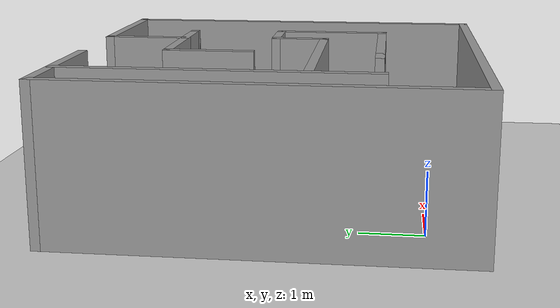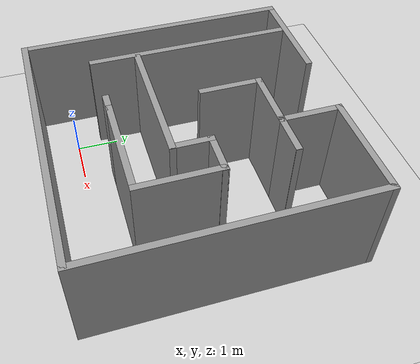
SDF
<sdf version="1.7">
 <world name="default">
  <light name="sun" type="directional">
   <pose>0 0 10 0 -0 0</pose>
   <diffuse>0.8 0.8 0.8 1</diffuse>
   <specular>0.2 0.2 0.2 1</specular>
   <attenuation>
    <range>1000</range>
    <constant>0.9</constant>
    <linear>0.01</linear>
    <quadratic>0.001</quadratic>
   </attenuation>
   <direction>-0.5 0.1 -0.9</direction>
   <spot><inner_angle>0</inner_angle><outer_angle>0</outer_angle><falloff>0</falloff></spot>
  </light>
  <model name="ground_plane">
   <static>1</static>
   <link name="link">
    <collision name="collision">
     <geometry><plane><normal>0 0 1</normal><size>100 100</size></plane></geometry>
     <surface>
      <contact><collide_bitmask>65535</collide_bitmask></contact>
      <friction><ode><mu>100</mu><mu2>50</mu2></ode></friction>
     </surface>
    </collision>
    <visual name="visual">
     <cast_shadows>0</cast_shadows>
     <geometry><plane><normal>0 0 1</normal><size>100 100</size></plane></geometry>
     <material>
      <script><uri>file://media/materials/scripts/gazebo.material</uri><name>Gazebo/Grey</name></script>
     </material>
    </visual>
   </link>
  </model>
  <gravity>0 0 -9.8</gravity>
  <magnetic_field>6e-06 2.3e-05 -4.2e-05</magnetic_field>
  <atmosphere type="adiabatic"/>
  <physics type="ode">
   <max_step_size>0.001</max_step_size>
   <real_time_factor>1</real_time_factor>
   <real_time_update_rate>1000</real_time_update_rate>
  </physics>
  <scene><ambient>0.4 0.4 0.4 1</ambient><background>0.7 0.7 0.7 1</background><shadows>1</shadows></scene>
  <audio><device>default</device></audio>
  <spherical_coordinates>
   <surface_model>EARTH_WGS84</surface_model>
   <latitude_deg>0</latitude_deg>
   <longitude_deg>0</longitude_deg>
   <elevation>0</elevation>
   <heading_deg>0</heading_deg>
  </spherical_coordinates>
  <model name="maze1">
   <pose>3.13 2.38 0 0 -0 0</pose>
   <link name="Wall_10">
    <collision name="Wall_10_Collision">
     <geometry><box><size>6.5 0.15 2.5</size></box></geometry>
     <pose>0 0 1.25 0 -0 0</pose>
    </collision>
    <visual name="Wall_10_Visual">
     <pose>0 0 1.25 0 -0 0</pose>
     <geometry><box><size>6.5 0.15 2.5</size></box></geometry>
     <material>
      <script><uri>file://media/materials/scripts/gazebo.material</uri><name>Gazebo/Grey</name></script>
      <ambient>1 1 1 1</ambient>
     </material>
     <meta><layer>0</layer></meta>
    </visual>
    <pose>-4.31449 0 0 0 -0 -1.5708</pose>
   </link>
   <link name="Wall_11">
    <collision name="Wall_11_Collision">
     <geometry><box><size>6.5 0.15 2.5</size></box></geometry>
     <pose>0 0 1.25 0 -0 0</pose>
    </collision>
    <visual name="Wall_11_Visual">
     <pose>0 0 1.25 0 -0 0</pose>
     <geometry><box><size>6.5 0.15 2.5</size></box></geometry>
     <material>
      <script><uri>file://media/materials/scripts/gazebo.material</uri><name>Gazebo/Grey</name></script>
      <ambient>1 1 1 1</ambient>
     </material>
     <meta><layer>0</layer></meta>
    </visual>
    <pose>-1.13949 -3.175 0 0 -0 0</pose>
   </link>
   <link name="Wall_12">
    <collision name="Wall_12_Collision">
     <geometry><box><size>6.5 0.15 2.5</size></box></geometry>
     <pose>0 0 1.25 0 -0 0</pose>
    </collision>
    <visual name="Wall_12_Visual">
     <pose>0 0 1.25 0 -0 0</pose>
     <geometry><box><size>6.5 0.15 2.5</size></box></geometry>
     <material>
      <script><uri>file://media/materials/scripts/gazebo.material</uri><name>Gazebo/Grey</name></script>
      <ambient>1 1 1 1</ambient>
     </material>
     <meta><layer>0</layer></meta>
    </visual>
    <pose>2.03551 0 0 0 -0 1.5708</pose>
   </link>
   <link name="Wall_13">
    <collision name="Wall_13_Collision">
     <geometry><box><size>2.5 0.15 2.5</size></box></geometry>
     <pose>0 0 1.25 0 -0 0</pose>
    </collision>
    <visual name="Wall_13_Visual">
     <pose>0 0 1.25 0 -0 0</pose>
     <geometry><box><size>2.5 0.15 2.5</size></box></geometry>
     <material>
      <script><uri>file://media/materials/scripts/gazebo.material</uri><name>Gazebo/Grey</name></script>
      <ambient>1 1 1 1</ambient>
     </material>
     <meta><layer>0</layer></meta>
    </visual>
    <pose>0.860505 3.175 0 0 -0 3.14159</pose>
   </link>
   <link name="Wall_16">
    <collision name="Wall_16_Collision">
     <geometry><box><size>5 0.15 2.5</size></box></geometry>
     <pose>0 0 1.25 0 -0 0</pose>
    </collision>
    <visual name="Wall_16_Visual">
     <pose>0 0 1.25 0 -0 0</pose>
     <geometry><box><size>5 0.15 2.5</size></box></geometry>
     <material>
      <script><uri>file://media/materials/scripts/gazebo.material</uri><name>Gazebo/Grey</name></script>
      <ambient>1 1 1 1</ambient>
     </material>
     <meta><layer>0</layer></meta>
    </visual>
    <pose>-3.36298 0.727856 0 0 -0 1.5708</pose>
   </link>
   <link name="Wall_24">
    <collision name="Wall_24_Collision">
     <geometry><box><size>1.5 0.15 2.5</size></box></geometry>
     <pose>0 0 1.25 0 -0 0</pose>
    </collision>
    <visual name="Wall_24_Visual">
     <pose>0 0 1.25 0 -0 0</pose>
     <geometry><box><size>1.5 0.15 2.5</size></box></geometry>
     <material>
      <script><uri>file://media/materials/scripts/gazebo.material</uri><name>Gazebo/Grey</name></script>
      <ambient>1 1 1 1</ambient>
     </material>
     <meta><layer>0</layer></meta>
    </visual>
    <pose>-0.314495 2.5 0 0 -0 -1.5708</pose>
   </link>
   <link name="Wall_25">
    <collision name="Wall_25_Collision">
     <geometry><box><size>0.16 0.15 2.5</size></box></geometry>
     <pose>0 0 1.25 0 -0 0</pose>
    </collision>
    <visual name="Wall_25_Visual">
     <pose>0 0 1.25 0 -0 0</pose>
     <geometry><box><size>0.16 0.15 2.5</size></box></geometry>
     <material>
      <script><uri>file://media/materials/scripts/gazebo.material</uri><name>Gazebo/Grey</name></script>
      <ambient>1 1 1 1</ambient>
     </material>
     <meta><layer>0</layer></meta>
    </visual>
    <pose>-0.309495 1.825 0 0 -0 0</pose>
   </link>
   <link name="Wall_26">
    <collision name="Wall_26_Collision">
     <geometry><box><size>1.5 0.15 2.5</size></box></geometry>
     <pose>0 0 1.25 0 -0 0</pose>
    </collision>
    <visual name="Wall_26_Visual">
     <pose>0 0 1.25 0 -0 0</pose>
     <geometry><box><size>1.5 0.15 2.5</size></box></geometry>
     <material>
      <script><uri>file://media/materials/scripts/gazebo.material</uri><name>Gazebo/Grey</name></script>
      <ambient>1 1 1 1</ambient>
     </material>
     <meta><layer>0</layer></meta>
    </visual>
    <pose>-0.979495 1.825 0 0 -0 3.14159</pose>
   </link>
   <link name="Wall_27">
    <collision name="Wall_27_Collision">
     <geometry><box><size>1.5 0.15 2.5</size></box></geometry>
     <pose>0 0 1.25 0 -0 0</pose>
    </collision>
    <visual name="Wall_27_Visual">
     <pose>0 0 1.25 0 -0 0</pose>
     <geometry><box><size>1.5 0.15 2.5</size></box></geometry>
     <material>
      <script><uri>file://media/materials/scripts/gazebo.material</uri><name>Gazebo/Grey</name></script>
      <ambient>1 1 1 1</ambient>
     </material>
     <meta><layer>0</layer></meta>
    </visual>
    <pose>-1.6545 1.15 0 0 -0 -1.5708</pose>
   </link>
   <link name="Wall_29">
    <collision name="Wall_29_Collision">
     <geometry><box><size>1 0.15 2.5</size></box></geometry>
     <pose>0 0 1.25 0 -0 0</pose>
    </collision>
    <visual name="Wall_29_Visual">
     <pose>0 0 1.25 0 -0 0</pose>
     <geometry><box><size>1 0.15 2.5</size></box></geometry>
     <material>
      <script><uri>file://media/materials/scripts/gazebo.material</uri><name>Gazebo/Grey</name></script>
      <ambient>1 1 1 1</ambient>
     </material>
     <meta><layer>0</layer></meta>
    </visual>
    <pose>0.120505 1.825 0 0 -0 0</pose>
   </link>
   <link name="Wall_30">
    <collision name="Wall_30_Collision">
     <geometry><box><size>0.16 0.15 2.5</size></box></geometry>
     <pose>0 0 1.25 0 -0 0</pose>
    </collision>
    <visual name="Wall_30_Visual">
     <pose>0 0 1.25 0 -0 0</pose>
     <geometry><box><size>0.16 0.15 2.5</size></box></geometry>
     <material>
      <script><uri>file://media/materials/scripts/gazebo.material</uri><name>Gazebo/Grey</name></script>
      <ambient>1 1 1 1</ambient>
     </material>
     <meta><layer>0</layer></meta>
    </visual>
    <pose>0.550505 1.825 0 0 -0 0</pose>
   </link>
   <link name="Wall_32">
    <collision name="Wall_32_Collision">
     <geometry><box><size>2 0.15 2.5</size></box></geometry>
     <pose>0 0 1.25 0 -0 0</pose>
    </collision>
    <visual name="Wall_32_Visual">
     <pose>0 0 1.25 0 -0 0</pose>
     <geometry><box><size>2 0.15 2.5</size></box></geometry>
     <material>
      <script><uri>file://media/materials/scripts/gazebo.material</uri><name>Gazebo/Grey</name></script>
      <ambient>1 1 1 1</ambient>
     </material>
     <meta><layer>0</layer></meta>
    </visual>
    <pose>0.652027 -0.704475 0 0 -0 1.5708</pose>
   </link>
   <link name="Wall_33">
    <collision name="Wall_33_Collision">
     <geometry><box><size>0.16 0.15 2.5</size></box></geometry>
     <pose>0 0 1.25 0 -0 0</pose>
    </collision>
    <visual name="Wall_33_Visual">
     <pose>0 0 1.25 0 -0 0</pose>
     <geometry><box><size>0.16 0.15 2.5</size></box></geometry>
     <material>
      <script><uri>file://media/materials/scripts/gazebo.material</uri><name>Gazebo/Grey</name></script>
      <ambient>1 1 1 1</ambient>
     </material>
     <meta><layer>0</layer></meta>
    </visual>
    <pose>0.657027 0.220525 0 0 -0 0</pose>
   </link>
   <link name="Wall_34">
    <collision name="Wall_34_Collision">
     <geometry><box><size>1 0.15 2.5</size></box></geometry>
     <pose>0 0 1.25 0 -0 0</pose>
    </collision>
    <visual name="Wall_34_Visual">
     <pose>0 0 1.25 0 -0 0</pose>
     <geometry><box><size>1 0.15 2.5</size></box></geometry>
     <material>
      <script><uri>file://media/materials/scripts/gazebo.material</uri><name>Gazebo/Grey</name></script>
      <ambient>1 1 1 1</ambient>
     </material>
     <meta><layer>0</layer></meta>
    </visual>
    <pose>0.237027 0.220525 0 0 -0 3.14159</pose>
   </link>
   <link name="Wall_35">
    <collision name="Wall_35_Collision">
     <geometry><box><size>1 0.15 2.5</size></box></geometry>
     <pose>0 0 1.25 0 -0 0</pose>
    </collision>
    <visual name="Wall_35_Visual">
     <pose>0 0 1.25 0 -0 0</pose>
     <geometry><box><size>1 0.15 2.5</size></box></geometry>
     <material>
      <script><uri>file://media/materials/scripts/gazebo.material</uri><name>Gazebo/Grey</name></script>
      <ambient>1 1 1 1</ambient>
     </material>
     <meta><layer>0</layer></meta>
    </visual>
    <pose>-0.187973 -0.204475 0 0 -0 -1.5708</pose>
   </link>
   <link name="Wall_36">
    <collision name="Wall_36_Collision">
     <geometry><box><size>3.25 0.15 2.5</size></box></geometry>
     <pose>0 0 1.25 0 -0 0</pose>
    </collision>
    <visual name="Wall_36_Visual">
     <pose>0 0 1.25 0 -0 0</pose>
     <geometry><box><size>3.25 0.15 2.5</size></box></geometry>
     <material>
      <script><uri>file://media/materials/scripts/gazebo.material</uri><name>Gazebo/Grey</name></script>
      <ambient>1 1 1 1</ambient>
     </material>
     <meta><layer>0</layer></meta>
    </visual>
    <pose>-1.73797 -0.629475 0 0 -0 3.14159</pose>
   </link>
   <link name="Wall_38">
    <collision name="Wall_38_Collision">
     <geometry><box><size>2.5 0.15 2.5</size></box></geometry>
     <pose>0 0 1.25 0 -0 0</pose>
    </collision>
    <visual name="Wall_38_Visual">
     <pose>0 0 1.25 0 -0 0</pose>
     <geometry><box><size>2.5 0.15 2.5</size></box></geometry>
     <material>
      <script><uri>file://media/materials/scripts/gazebo.material</uri><name>Gazebo/Grey</name></script>
      <ambient>1 1 1 1</ambient>
     </material>
     <meta><layer>0</layer></meta>
    </visual>
    <pose>-0.522973 -1.62948 0 0 -0 3.14159</pose>
   </link>
   <link name="Wall_39">
    <collision name="Wall_39_Collision">
     <geometry><box><size>0.5 0.15 2.5</size></box></geometry>
     <pose>0 0 1.25 0 -0 0</pose>
    </collision>
    <visual name="Wall_39_Visual">
     <pose>0 0 1.25 0 -0 0</pose>
     <geometry><box><size>0.5 0.15 2.5</size></box></geometry>
     <material>
      <script><uri>file://media/materials/scripts/gazebo.material</uri><name>Gazebo/Grey</name></script>
      <ambient>1 1 1 1</ambient>
     </material>
     <meta><layer>0</layer></meta>
    </visual>
    <pose>-1.87297 -1.62948 0 0 -0 3.14159</pose>
   </link>
   <link name="Wall_9">
    <collision name="Wall_9_Collision">
     <geometry><box><size>2.5 0.15 2.5</size></box></geometry>
     <pose>0 0 1.25 0 -0 0</pose>
    </collision>
    <visual name="Wall_9_Visual">
     <pose>0 0 1.25 0 -0 0</pose>
     <geometry><box><size>2.5 0.15 2.5</size></box></geometry>
     <material>
      <script><uri>file://media/materials/scripts/gazebo.material</uri><name>Gazebo/Grey</name></script>
      <ambient>1 1 1 1</ambient>
     </material>
     <meta><layer>0</layer></meta>
    </visual>
    <pose>-3.1395 3.175 0 0 -0 3.14159</pose>
   </link>
   <static>1</static>
  </model>
 </world>
</sdf>
